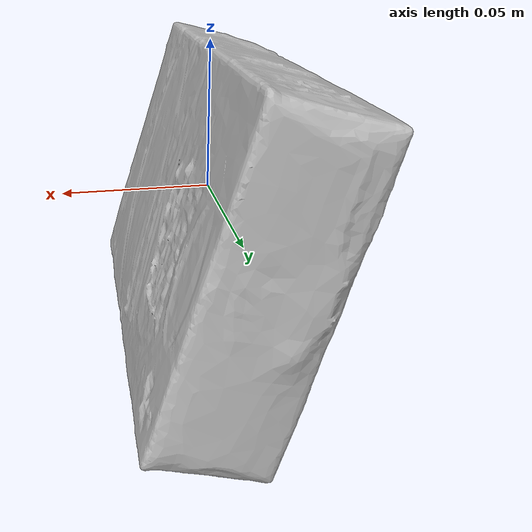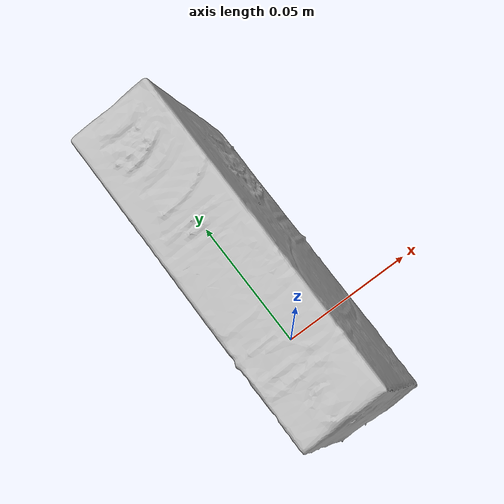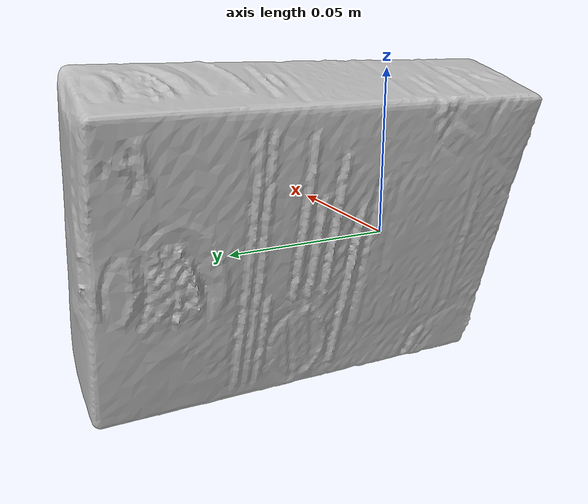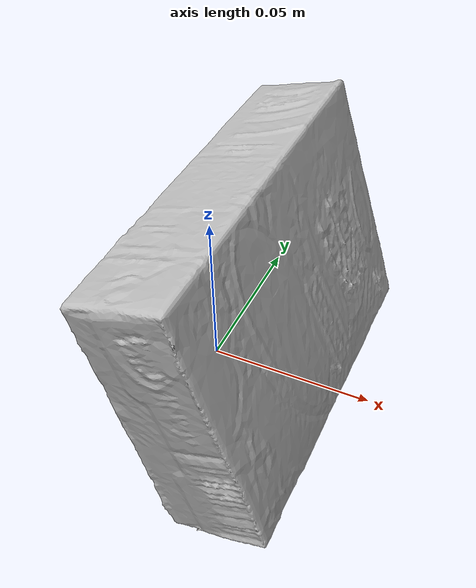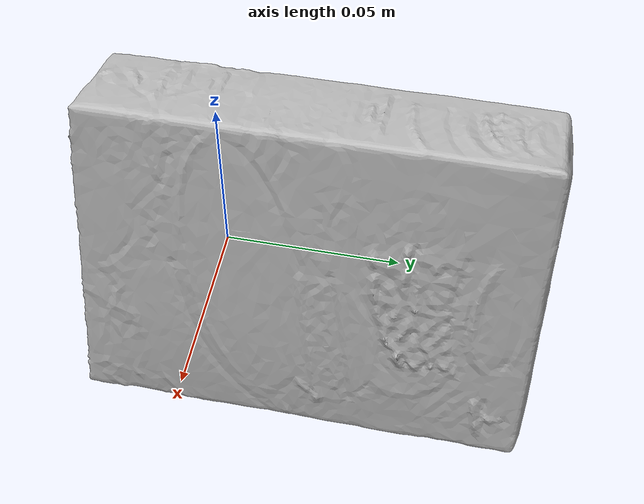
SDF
<?xml version='1.0'?>
<sdf version="1.4">
  <model name="HotPot2">
    <static>false</static>
    <link name="link">
      <inertial>
        <pose>0.004159680811673257 0.02707460103286095 0.0026355768889757135 -1.5823075358255325 0.2932427631515151 3.1365624682312436</pose>
        <mass>0.044198982654004855</mass>
        <inertia>
          <ixx>9.232489927066005e-05</ixx>
          <ixy>-3.8772054904371886e-21</ixy>
          <ixz>-5.507142871300466e-21</ixz>
          <iyy>6.485937462600332e-05</iyy>
          <iyz>-9.90187077734441e-21</iyz>
          <izz>3.701140344141439e-05</izz>
        </inertia>
      </inertial>
      <collision name="collision">
        <geometry>
          <mesh>
            <!-- Use a downsampled mesh for collisions -->
            <uri>model:///HotPot2/HotPot2_250_collision.obj</uri>
	        </mesh>
        </geometry>
        <surface>
      </surface>
      </collision>
      <visual name="visual">
        <geometry>
          <mesh>
            <uri>model:///HotPot2/HotPot2_25k_tex.obj</uri>
	        </mesh>
        </geometry>
        <material>
          <script>
            <uri>model:///HotPot2/HotPot2.material</uri>
            <name>HotPot2</name>
          </script>
        </material>
      </visual>
    </link>
  </model>
</sdf>
